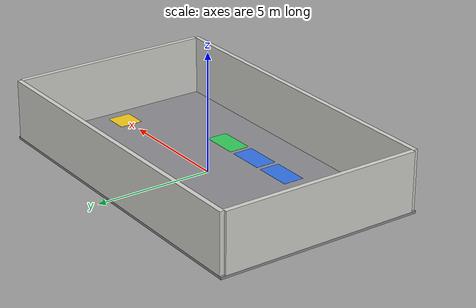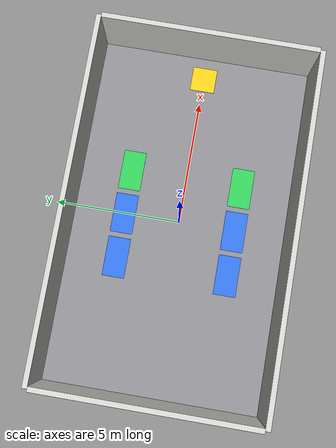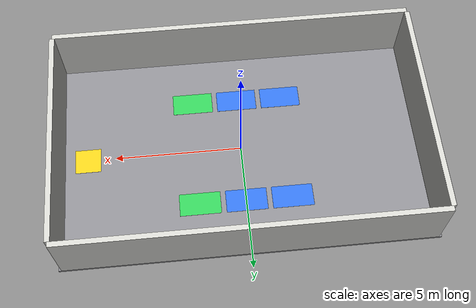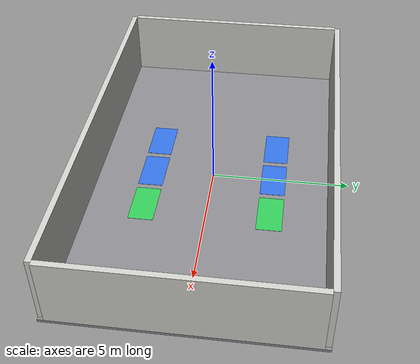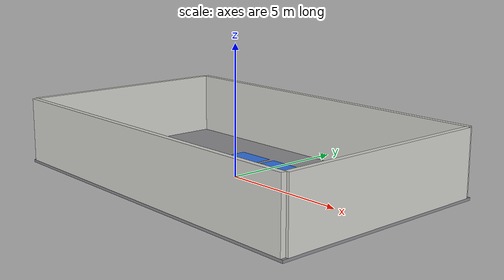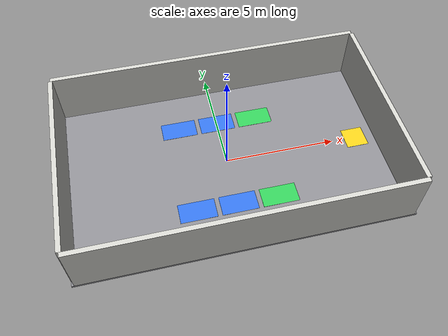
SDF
<sdf version="1.9">
 <world name="warehouse">
  <physics name="1ms" type="ignored">
   <max_step_size>0.001</max_step_size>
   <real_time_factor>1.0</real_time_factor>
  </physics>
  <plugin filename="gz-sim-physics-system" name="gz::sim::systems::Physics"/>
  <plugin filename="gz-sim-user-commands-system" name="gz::sim::systems::UserCommands"/>
  <plugin filename="gz-sim-scene-broadcaster-system" name="gz::sim::systems::SceneBroadcaster"/>
  <plugin filename="gz-sim-sensors-system" name="gz::sim::systems::Sensors">
   <render_engine>ogre2</render_engine>
  </plugin>
  <plugin filename="gz-sim-imu-system" name="gz::sim::systems::Imu"/>
  <scene>
   <ambient>0.45 0.45 0.45 1</ambient>
   <background>0.75 0.8 0.85 1</background>
   <shadows>true</shadows>
  </scene>
  <light type="directional" name="sun">
   <pose>0 0 10 0 0 0</pose>
   <diffuse>0.85 0.85 0.85 1</diffuse>
   <specular>0.2 0.2 0.2 1</specular>
   <direction>-0.5 0.2 -0.9</direction>
  </light>
  <model name="floor">
   <static>true</static>
   <link name="link">
    <collision name="collision">
     <pose>0 0 -0.05 0 0 0</pose>
     <geometry><box><size>14.4 8.9 0.1</size></box></geometry>
     <surface><friction><ode><mu>1.0</mu><mu2>1.0</mu2></ode></friction></surface>
    </collision>
    <visual name="visual">
     <pose>0 0 -0.05 0 0 0</pose>
     <geometry><box><size>14.4 8.9 0.1</size></box></geometry>
     <material>
      <ambient>0.55 0.55 0.57 1</ambient>
      <diffuse>0.55 0.55 0.57 1</diffuse>
      <specular>0.05 0.05 0.05 1</specular>
     </material>
    </visual>
   </link>
  </model>
  <model name="walls">
   <static>true</static>
   <link name="link">
    <collision name="wall_n">
     <pose>0 4.35 1.25 0 0 0</pose>
     <geometry><box><size>14.2 0.2 2.5</size></box></geometry>
     <surface><friction><ode><mu>1</mu><mu2>1</mu2></ode></friction></surface>
    </collision>
    <visual name="wall_n">
     <pose>0 4.35 1.25 0 0 0</pose>
     <geometry><box><size>14.2 0.2 2.5</size></box></geometry>
     <material>
      <ambient>0.82 0.82 0.8 1</ambient>
      <diffuse>0.82 0.82 0.8 1</diffuse>
      <specular>0.1 0.1 0.1 1</specular>
     </material>
    </visual>
    <collision name="wall_s">
     <pose>0 -4.35 1.25 0 0 0</pose>
     <geometry><box><size>14.2 0.2 2.5</size></box></geometry>
     <surface><friction><ode><mu>1</mu><mu2>1</mu2></ode></friction></surface>
    </collision>
    <visual name="wall_s">
     <pose>0 -4.35 1.25 0 0 0</pose>
     <geometry><box><size>14.2 0.2 2.5</size></box></geometry>
     <material>
      <ambient>0.82 0.82 0.8 1</ambient>
      <diffuse>0.82 0.82 0.8 1</diffuse>
      <specular>0.1 0.1 0.1 1</specular>
     </material>
    </visual>
    <collision name="wall_e">
     <pose>7.1 0 1.25 0 0 0</pose>
     <geometry><box><size>0.2 8.5 2.5</size></box></geometry>
     <surface><friction><ode><mu>1</mu><mu2>1</mu2></ode></friction></surface>
    </collision>
    <visual name="wall_e">
     <pose>7.1 0 1.25 0 0 0</pose>
     <geometry><box><size>0.2 8.5 2.5</size></box></geometry>
     <material>
      <ambient>0.82 0.82 0.8 1</ambient>
      <diffuse>0.82 0.82 0.8 1</diffuse>
      <specular>0.1 0.1 0.1 1</specular>
     </material>
    </visual>
    <collision name="wall_w">
     <pose>-7.1 0 1.25 0 0 0</pose>
     <geometry><box><size>0.2 8.5 2.5</size></box></geometry>
     <surface><friction><ode><mu>1</mu><mu2>1</mu2></ode></friction></surface>
    </collision>
    <visual name="wall_w">
     <pose>-7.1 0 1.25 0 0 0</pose>
     <geometry><box><size>0.2 8.5 2.5</size></box></geometry>
     <material>
      <ambient>0.82 0.82 0.8 1</ambient>
      <diffuse>0.82 0.82 0.8 1</diffuse>
      <specular>0.1 0.1 0.1 1</specular>
     </material>
    </visual>
   </link>
  </model>
  <model name="bay_markings">
   <static>true</static>
   <link name="link">
    <visual name="bay_A1">
     <pose>-1.8 2.25 0.002 0 0 0</pose>
     <geometry><box><size>1.6 0.9 0.004</size></box></geometry>
     <material>
      <ambient>0.2 0.45 0.9 1</ambient>
      <diffuse>0.2 0.45 0.9 1</diffuse>
      <specular>0.1 0.1 0.1 1</specular>
     </material>
    </visual>
    <visual name="bay_A2">
     <pose>0 2.25 0.002 0 0 0</pose>
     <geometry><box><size>1.6 0.9 0.004</size></box></geometry>
     <material>
      <ambient>0.2 0.45 0.9 1</ambient>
      <diffuse>0.2 0.45 0.9 1</diffuse>
      <specular>0.1 0.1 0.1 1</specular>
     </material>
    </visual>
    <visual name="bay_A3">
     <pose>1.8 2.25 0.002 0 0 0</pose>
     <geometry><box><size>1.6 0.9 0.004</size></box></geometry>
     <material>
      <ambient>0.2 0.8 0.35 1</ambient>
      <diffuse>0.2 0.8 0.35 1</diffuse>
      <specular>0.1 0.1 0.1 1</specular>
     </material>
    </visual>
    <visual name="bay_B1">
     <pose>-1.8 -2.25 0.002 0 0 0</pose>
     <geometry><box><size>1.6 0.9 0.004</size></box></geometry>
     <material>
      <ambient>0.2 0.45 0.9 1</ambient>
      <diffuse>0.2 0.45 0.9 1</diffuse>
      <specular>0.1 0.1 0.1 1</specular>
     </material>
    </visual>
    <visual name="bay_B2">
     <pose>0 -2.25 0.002 0 0 0</pose>
     <geometry><box><size>1.6 0.9 0.004</size></box></geometry>
     <material>
      <ambient>0.2 0.45 0.9 1</ambient>
      <diffuse>0.2 0.45 0.9 1</diffuse>
      <specular>0.1 0.1 0.1 1</specular>
     </material>
    </visual>
    <visual name="bay_B3">
     <pose>1.8 -2.25 0.002 0 0 0</pose>
     <geometry><box><size>1.6 0.9 0.004</size></box></geometry>
     <material>
      <ambient>0.2 0.8 0.35 1</ambient>
      <diffuse>0.2 0.8 0.35 1</diffuse>
      <specular>0.1 0.1 0.1 1</specular>
     </material>
    </visual>
    <visual name="dock_zone">
     <pose>6.1 0 0.002 0 0 0</pose>
     <geometry><box><size>1 1 0.004</size></box></geometry>
     <material>
      <ambient>0.95 0.8 0.1 1</ambient>
      <diffuse>0.95 0.8 0.1 1</diffuse>
      <specular>0.1 0.1 0.1 1</specular>
     </material>
    </visual>
   </link>
  </model>
 </world>
</sdf>
